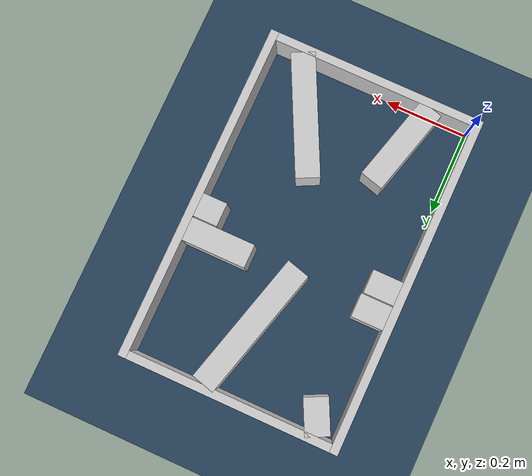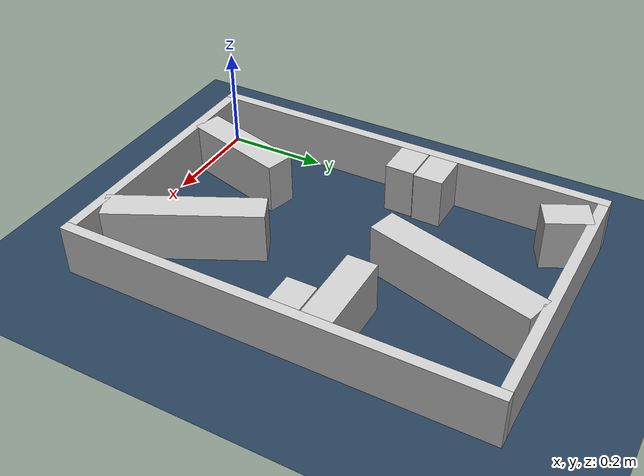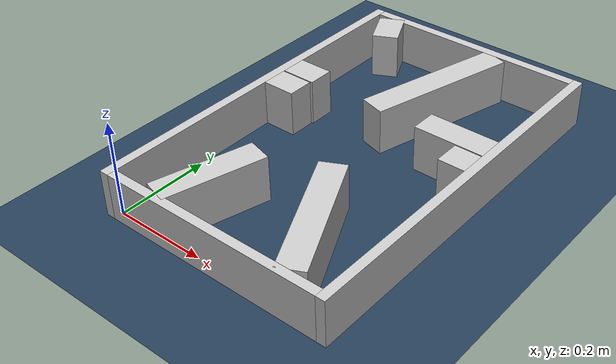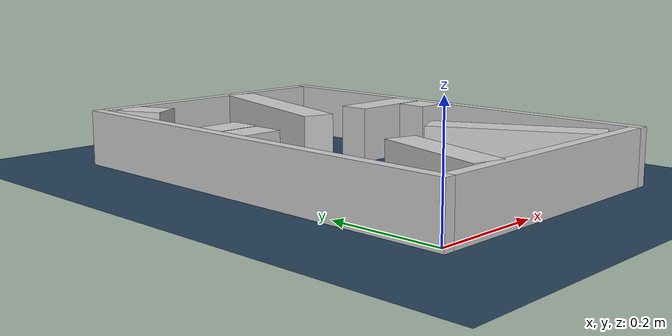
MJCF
<?xml version="1.0" ?>
<mujoco model="generated_real_template">
  <compiler angle="degree"/>
  <option timestep="0.002" integrator="implicitfast" iterations="100" cone="elliptic"/>
  <default>
    <geom density="1"/>
  </default>
  <asset>
    <texture builtin="gradient" height="3072" rgb1="0.3 0.5 0.7" rgb2="0 0 0" type="skybox" width="512"/>
    <texture builtin="checker" height="300" mark="edge" markrgb="0.8 0.8 0.8" name="groundplane" rgb1="0.2 0.3 0.4" rgb2="0.1 0.2 0.3" type="2d" width="300"/>
    <material name="groundplane" reflectance="0.2" texrepeat="5 5" texture="groundplane" texuniform="true"/>
  </asset>
  <worldbody>
    <light dir="0 0 -1" directional="true" pos="0 0 1.5"/>
    <geom name="floor" type="plane" condim="4" friction="0.5 0.005 0.001" material="groundplane" size="0 0 0.05"/>
    <body name="walls">
      <geom name="wall_boundary_left" type="box" condim="4" friction="1.0 0.005 0.0001" rgba="0.8 0.8 0.8 1" pos="-0.010000 0.387500 0.050000" euler="0 0 0.000000" size="0.010000 0.407500 0.050000"/>
      <geom name="wall_boundary_right" type="box" condim="4" friction="1.0 0.005 0.0001" rgba="0.8 0.8 0.8 1" pos="0.500000 0.387500 0.050000" euler="0 0 0.000000" size="0.010000 0.407500 0.050000"/>
      <geom name="wall_boundary_bottom" type="box" condim="4" friction="1.0 0.005 0.0001" rgba="0.8 0.8 0.8 1" pos="0.245000 -0.010000 0.050000" euler="0 0 0.000000" size="0.245000 0.010000 0.050000"/>
      <geom name="wall_boundary_top" type="box" condim="4" friction="1.0 0.005 0.0001" rgba="0.8 0.8 0.8 1" pos="0.245000 0.785000 0.050000" euler="0 0 0.000000" size="0.245000 0.010000 0.050000"/>
      <geom name="wall_inner_1_1" type="box" condim="4" friction="1.0 0.005 0.0001" rgba="0.8 0.8 0.8 1" pos="0.036286 0.418121 0.050000" euler="0 0 0.000000" size="0.036286 0.028500 0.050000"/>
      <geom name="wall_inner_1_2" type="box" condim="4" friction="1.0 0.005 0.0001" rgba="0.8 0.8 0.8 1" pos="0.460736 0.418121 0.050000" euler="0 0 0.000000" size="0.029264 0.028500 0.050000"/>
      <geom name="wall_inner_2_1" type="box" condim="4" friction="1.0 0.005 0.0001" rgba="0.8 0.8 0.8 1" pos="0.055362 0.736256 0.050000" euler="0 0 -63.579930" size="0.043262 0.028500 0.050000"/>
      <geom name="wall_inner_2_2" type="box" condim="4" friction="1.0 0.005 0.0001" rgba="0.8 0.8 0.8 1" pos="0.356118 0.130919 0.050000" euler="0 0 -63.579930" size="0.146187 0.028500 0.050000"/>
      <geom name="wall_inner_3_1" type="box" condim="4" friction="1.0 0.005 0.0001" rgba="0.8 0.8 0.8 1" pos="0.269029 0.615889 0.050000" euler="0 0 -105.246755" size="0.164916 0.028500 0.050000"/>
      <geom name="wall_inner_3_2" type="box" condim="4" friction="1.0 0.005 0.0001" rgba="0.8 0.8 0.8 1" pos="0.129625 0.104446 0.050000" euler="0 0 -105.246755" size="0.108256 0.028500 0.050000"/>
      <geom name="wall_inner_4_1" type="box" condim="4" friction="1.0 0.005 0.0001" rgba="0.8 0.8 0.8 1" pos="0.038128 0.477517 0.050000" euler="0 0 0.000000" size="0.038128 0.028500 0.050000"/>
      <geom name="wall_inner_4_2" type="box" condim="4" friction="1.0 0.005 0.0001" rgba="0.8 0.8 0.8 1" pos="0.413157 0.477517 0.050000" euler="0 0 0.000000" size="0.076843 0.028500 0.050000"/>
    </body>
  </worldbody>
</mujoco>
